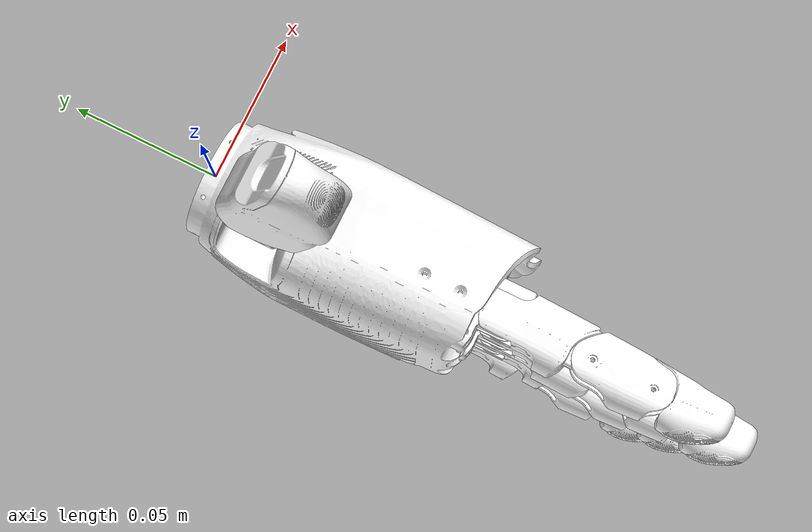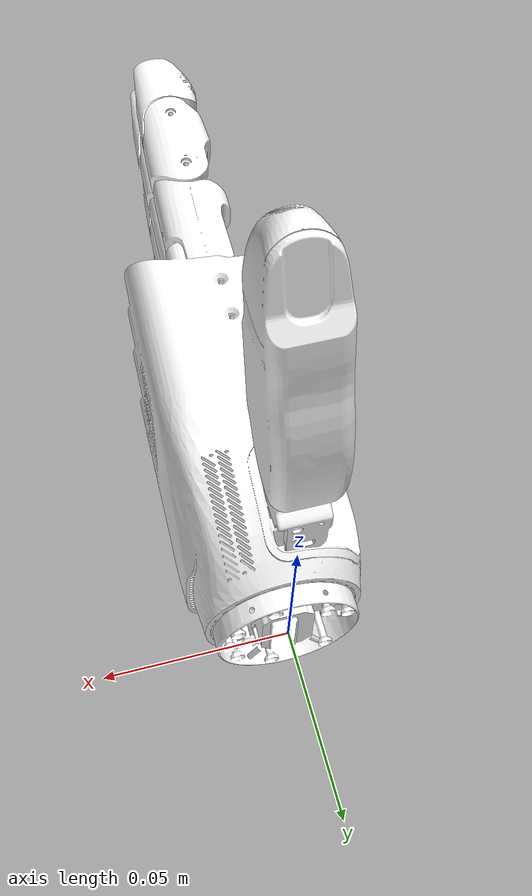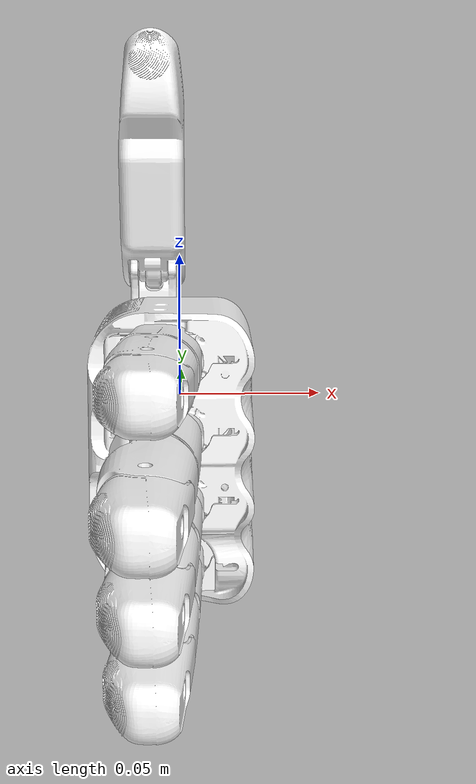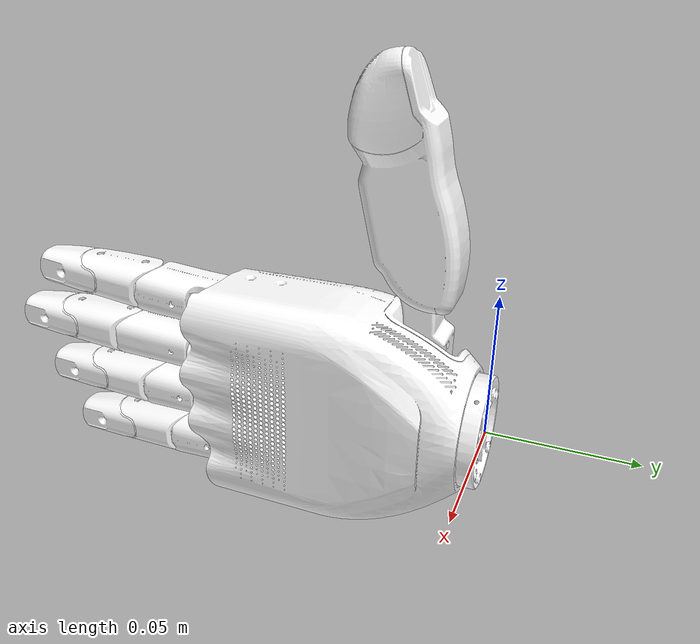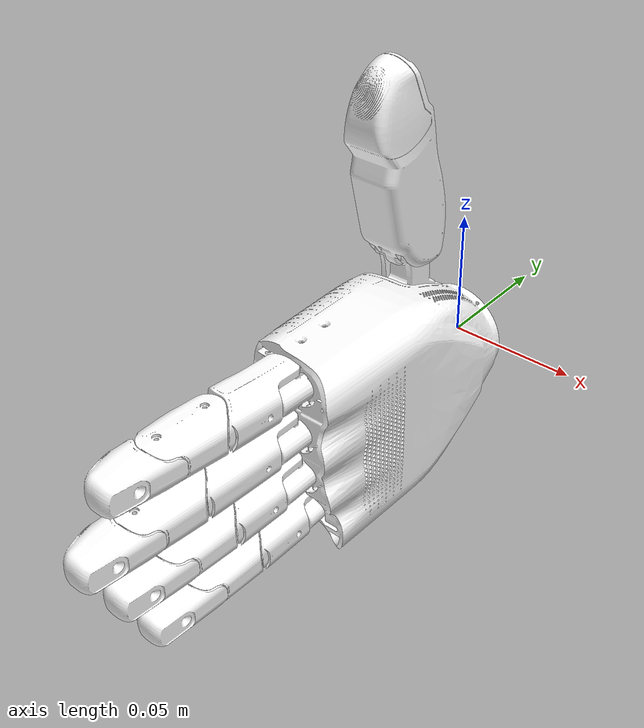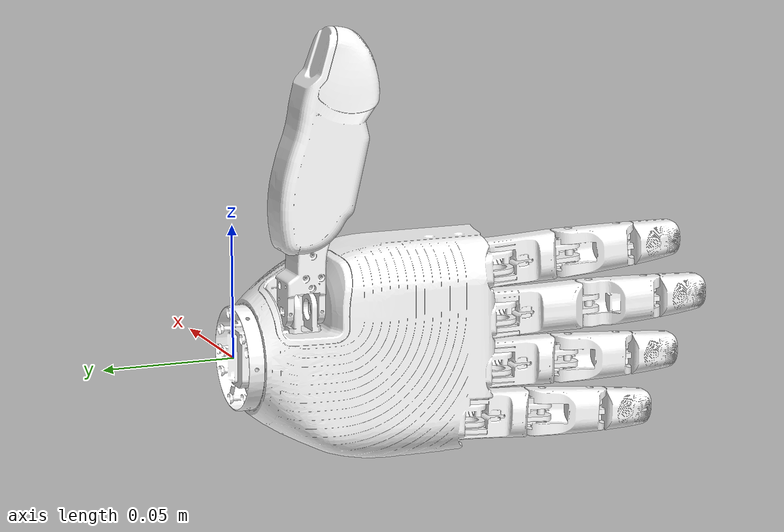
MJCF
<mujoco model="CASIAHAND-M-Left">
  <compiler angle="radian"/>

  <asset>
    <mesh name="left_base_link" content_type="model/stl" file="meshes/left_base_link.STL"/>
    <mesh name="left_thumb_proximal_link" content_type="model/stl" file="meshes/left_thumb_proximal_link.STL"/>
    <mesh name="left_thumb_intermediate_link" content_type="model/stl" file="meshes/left_thumb_intermediate_link.STL"/>
    <mesh name="left_index_proximal_link" content_type="model/stl" file="meshes/left_index_proximal_link.STL"/>
    <mesh name="left_index_intermediate_link" content_type="model/stl" file="meshes/left_index_intermediate_link.STL"/>
    <mesh name="left_index_distal_link" content_type="model/stl" file="meshes/left_index_distal_link.STL"/>
    <mesh name="left_middle_proximal_link" content_type="model/stl" file="meshes/left_middle_proximal_link.STL"/>
    <mesh name="left_middle_intermediate_link" content_type="model/stl" file="meshes/left_middle_intermediate_link.STL"/>
    <mesh name="left_middle_distal_link" content_type="model/stl" file="meshes/left_middle_distal_link.STL"/>
    <mesh name="left_ring_proximal_link" content_type="model/stl" file="meshes/left_ring_proximal_link.STL"/>
    <mesh name="left_ring_intermediate_link" content_type="model/stl" file="meshes/left_ring_intermediate_link.STL"/>
    <mesh name="left_ring_distal_link" content_type="model/stl" file="meshes/left_ring_distal_link.STL"/>
    <mesh name="left_pinky_proximal_link" content_type="model/stl" file="meshes/left_pinky_proximal_link.STL"/>
    <mesh name="left_pinky_intermediate_link" content_type="model/stl" file="meshes/left_pinky_intermediate_link.STL"/>
    <mesh name="left_pinky_distal_link" content_type="model/stl" file="meshes/left_pinky_distal_link.STL"/>
  </asset>

  <worldbody>
    <geom quat="0.000563088 -0.000563088 -0.707107 0.707107" type="mesh" rgba="1 1 1 1" mesh="left_base_link"/>
    <body name="left_thumb_proximal_link" pos="-0.00856566 -0.0213814 0.018144" quat="0.000563088 -0.000563088 -0.707107 0.707107">
      <inertial pos="-0.000552582 -0.0149645 0.0035255" quat="0.565248 0.460157 -0.440802 0.523873" mass="0.00377123" diaginertia="4.04606e-07 3.88523e-07 1.41349e-07"/>
      <joint name="left_thumb_proximal" pos="0 0 0" axis="0 0 1" range="0 1.57"/>
      <geom type="mesh" rgba="1 1 1 1" mesh="left_thumb_proximal_link"/>
      <body name="left_thumb_intermediate_link" pos="0.0048 -0.031252 0.0076698">
        <inertial pos="-0.0054194 -0.02984 0.00389153" quat="0.832567 0.552935 -0.0179982 0.0277868" mass="0.0167705" diaginertia="5.76338e-06 5.74388e-06 1.58867e-06"/>
        <joint name="left_thumb_intermediate" pos="0 0 0" axis="-1 0 0" range="0 1.57"/>
        <geom type="mesh" rgba="1 1 1 1" mesh="left_thumb_intermediate_link"/>
      </body>
    </body>
    <body name="left_index_proximal_link" pos="-0.00460755 -0.103313 0.026839" quat="0.000577635 -0.000548155 -0.688354 0.725374">
      <inertial pos="-0.00127246 -0.00231182 0.0132738" quat="0.999852 0.000348223 -0.0165685 -0.00456462" mass="0.00492233" diaginertia="5.51093e-07 5.28459e-07 2.64972e-07"/>
      <joint name="left_index_proximal" pos="0 0 0" axis="0 1 0" range="0 1.57"/>
      <geom type="mesh" rgba="1 1 1 1" mesh="left_index_proximal_link"/>
      <body name="left_index_intermediate_link" pos="0 -0.0020239 0.03">
        <inertial pos="-0.00235251 0.0110173 -0.0726433" quat="0.949296 -0.312521 -0.00425862 0.0339175" mass="0.0908251" diaginertia="0.000304279 0.000209402 0.000124779"/>
        <joint name="left_index_intermediate" pos="0 0 0" axis="0 1 0" range="0 1.57"/>
        <geom type="mesh" rgba="1 1 1 1" mesh="left_index_intermediate_link"/>
        <body name="left_index_distal_link" pos="0 0 0.02">
          <inertial pos="0.00149708 -0.000369375 0.0125051" quat="0.991561 -0.000436768 -0.128908 -0.0137211" mass="0.000998956" diaginertia="5.0204e-08 3.99291e-08 2.12563e-08"/>
          <joint name="left_index_distal" pos="0 0 0" axis="0 1 0" range="0 0.785"/>
          <geom type="mesh" rgba="1 1 1 1" mesh="left_index_distal_link"/>
        </body>
      </body>
    </body>
    <body name="left_middle_proximal_link" pos="-0.00460951 -0.104543 0.0073228" quat="0.00056798 -0.000558153 -0.700909 0.71325">
      <inertial pos="-0.00235251 -0.00905842 -0.043197" quat="0.954605 -0.295906 -0.00484991 0.033838" mass="0.0908251" diaginertia="0.000304279 0.000209402 0.000124779"/>
      <joint name="left_middle_proximal" pos="0 0 0" axis="0 1 0" range="0 1.57"/>
      <geom type="mesh" rgba="1 1 1 1" mesh="left_middle_proximal_link"/>
      <body name="left_middle_intermediate_link" pos="0 -0.000921 0.037">
        <inertial pos="3.72071e-07 0.00136209 -9.60581e-08" quat="0.707107 0.707107 0 0" mass="0.000110031" diaginertia="2.19217e-09 2.18235e-09 1.64028e-10"/>
        <joint name="left_middle_intermediate" pos="0 0 0" axis="0 1 0" range="0 1.57"/>
        <geom type="mesh" rgba="1 1 1 1" mesh="left_middle_intermediate_link"/>
        <body name="left_middle_distal_link" pos="0 -0.000975 0.023">
          <inertial pos="0.0014971 -0.000384157 0.0125051" quat="0.991562 -0.000427863 -0.128906 -0.0137272" mass="0.000998947" diaginertia="5.02029e-08 3.99281e-08 2.12564e-08"/>
          <joint name="left_middle_distal" pos="0 0 0" axis="0 1 0" range="0 0.785"/>
          <geom type="mesh" rgba="1 1 1 1" mesh="left_middle_distal_link"/>
        </body>
      </body>
    </body>
    <body name="left_ring_proximal_link" pos="-0.00460683 -0.102863 -0.012168" quat="0.000558153 -0.00056798 -0.71325 0.700909">
      <inertial pos="-0.00127247 -0.00231182 0.0132738" quat="0.999852 0.000348491 -0.0165687 -0.00456143" mass="0.00492233" diaginertia="5.51093e-07 5.2846e-07 2.64972e-07"/>
      <joint name="left_ring_proximal" pos="0 0 0" axis="0 1 0" range="0 1.57"/>
      <geom type="mesh" rgba="1 1 1 1" mesh="left_ring_proximal_link"/>
      <body name="left_ring_intermediate_link" pos="0 -0.0020239 0.03">
        <inertial pos="-0.00235251 -0.0250383 -0.0721482" quat="0.959624 -0.279201 -0.00543973 0.0337482" mass="0.0908251" diaginertia="0.000304279 0.000209402 0.000124779"/>
        <joint name="left_ring_intermediate" pos="0 0 0" axis="0 1 0" range="0 1.57"/>
        <geom type="mesh" rgba="1 1 1 1" mesh="left_ring_intermediate_link"/>
        <body name="left_ring_distal_link" pos="0 0 0.02">
          <inertial pos="0.00149724 -0.000369203 0.0125048" quat="0.99156 -0.000354162 -0.128917 -0.0137474" mass="0.000998947" diaginertia="5.02018e-08 3.9927e-08 2.12569e-08"/>
          <joint name="left_ring_distal" pos="0 0 0" axis="0 1 0" range="0 0.785"/>
          <geom type="mesh" rgba="1 1 1 1" mesh="left_ring_distal_link"/>
        </body>
      </body>
    </body>
    <body name="left_pinky_proximal_link" pos="-0.00458948 -0.0919698 -0.031174" quat="0.000548155 -0.000577635 -0.725374 0.688354">
      <inertial pos="-0.00127247 -0.00220032 0.0132738" quat="0.999852 0.000191159 -0.0165704 -0.00455588" mass="0.00492233" diaginertia="5.51093e-07 5.2846e-07 2.64972e-07"/>
      <joint name="left_pinky_proximal" pos="0 0 0" axis="0 1 0" range="0 1.57"/>
      <geom type="mesh" rgba="1 1 1 1" mesh="left_pinky_proximal_link"/>
      <body name="left_pinky_intermediate_link" pos="0 -0.0019071 0.03" quat="1 -0.00015764 0 0">
        <inertial pos="-0.00235251 -0.0431982 -0.0631958" quat="0.964392 -0.262258 -0.00603319 0.0336472" mass="0.0908251" diaginertia="0.000304279 0.000209402 0.000124779"/>
        <joint name="left_pinky_intermediate" pos="0 0 0" axis="0 1 0" range="0 1.57"/>
        <geom type="mesh" rgba="1 1 1 1" mesh="left_pinky_intermediate_link"/>
        <body name="left_pinky_distal_link" pos="0 0 0.02">
          <inertial pos="0.00149724 -0.000369199 0.0125048" quat="0.99156 -0.000351928 -0.128918 -0.0137484" mass="0.000998948" diaginertia="5.02019e-08 3.9927e-08 2.12569e-08"/>
          <joint name="left_pinky_distal" pos="0 0 0" axis="0 1 0" range="0 0.785"/>
          <geom type="mesh" rgba="1 1 1 1" mesh="left_pinky_distal_link"/>
        </body>
      </body>
    </body>
  </worldbody>
</mujoco>
